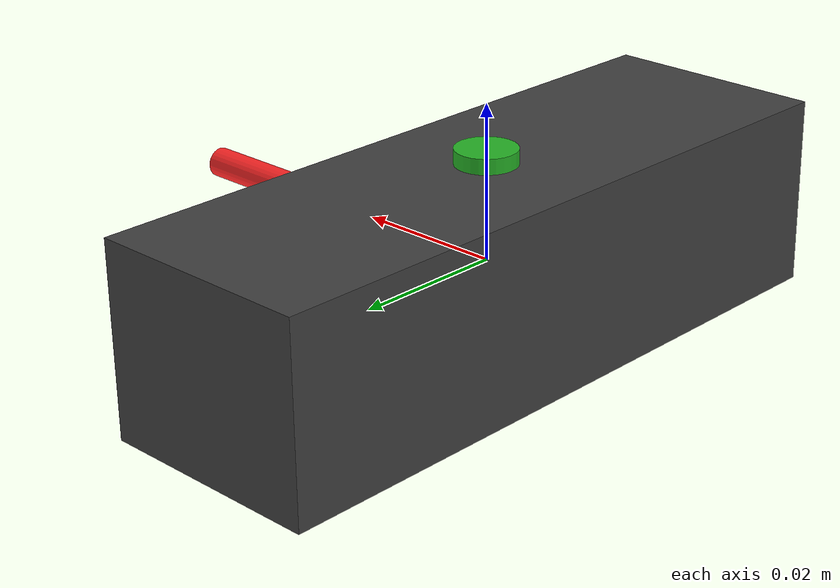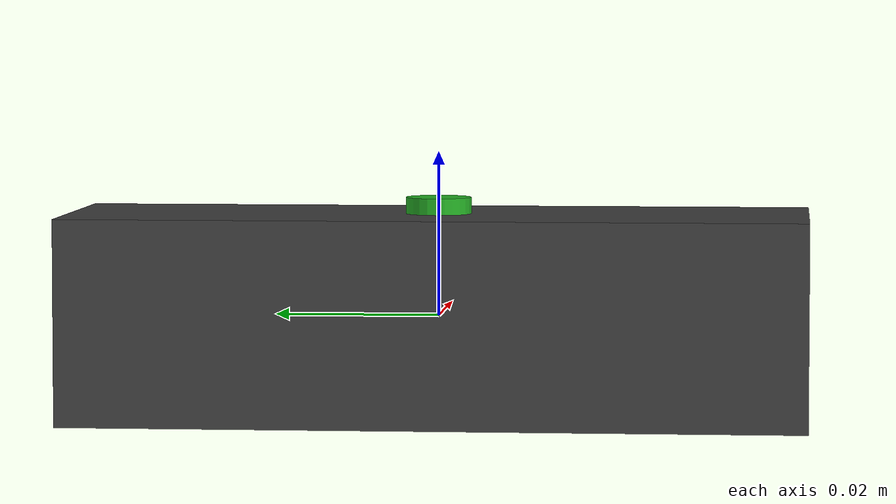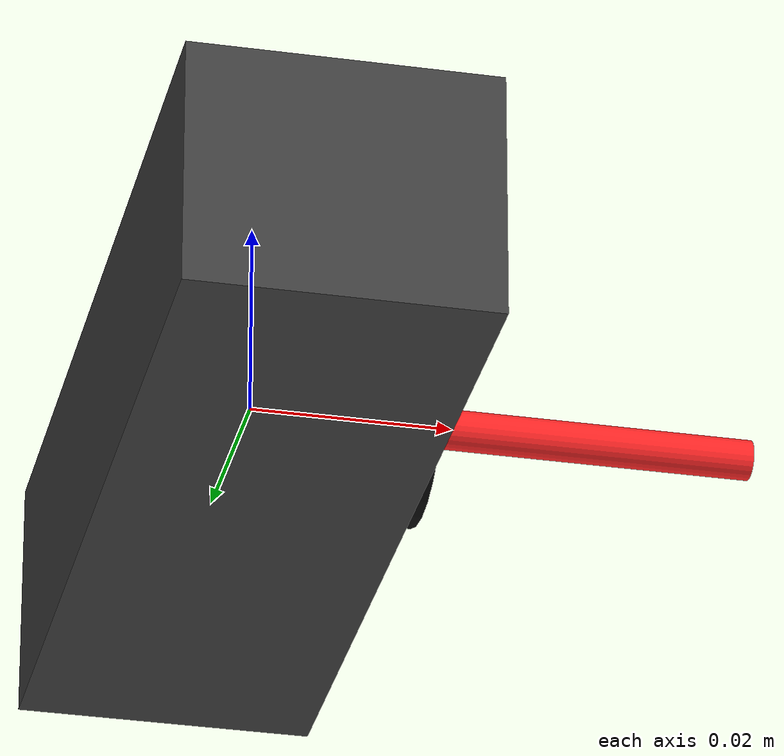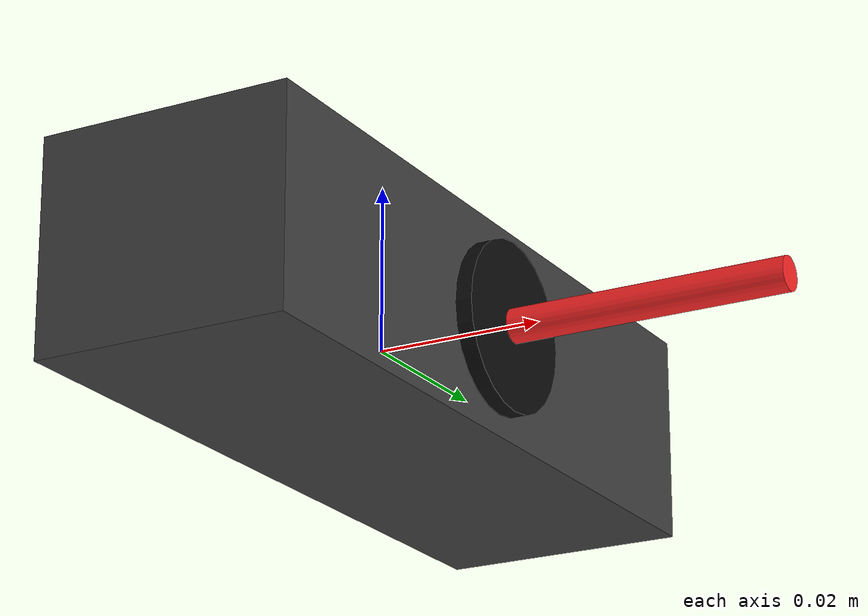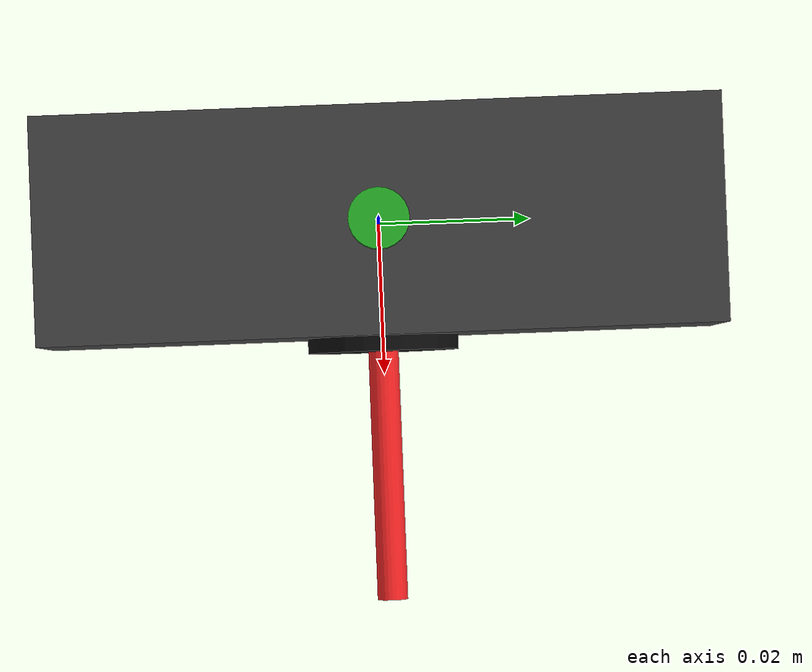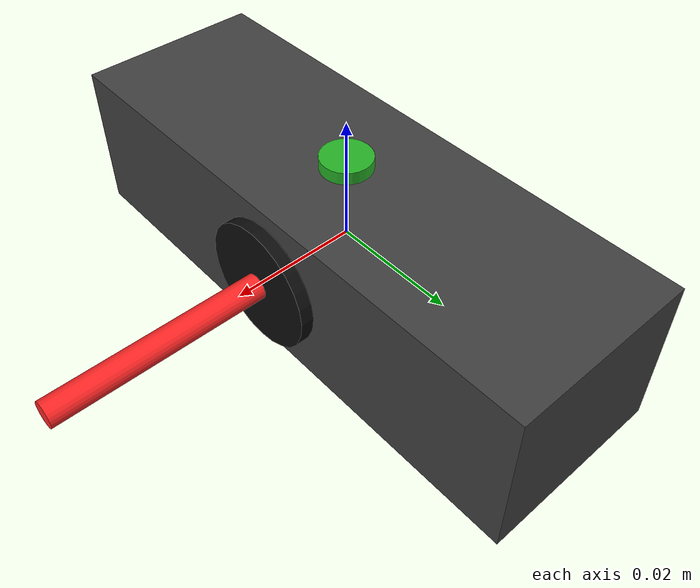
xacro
<?xml version="1.0"?>
<!--
  Fixed RGB-D Camera URDF xacro — 无底座独立相机模型。
  用于 spawn_fixed_cameras.py 生成 Gazebo 相机。
  参数通过 xacro 命令行传入。
-->
<robot name="$(arg name)" xmlns:xacro="http://ros.org/wiki/xacro">

  <xacro:arg name="name" default="camera"/>
  <xacro:arg name="color_width" default="424"/>
  <xacro:arg name="color_height" default="240"/>
  <xacro:arg name="depth_width" default="424"/>
  <xacro:arg name="depth_height" default="240"/>
  <xacro:arg name="fps" default="5"/>
  <xacro:arg name="color_hfov" default="1.2112585"/>
  <xacro:arg name="depth_hfov" default="1.2112585"/>

  <material name="$(arg name)_body"><color rgba="0.25 0.25 0.25 1"/></material>
  <material name="$(arg name)_lens"><color rgba="0.05 0.05 0.05 1"/></material>
  <material name="$(arg name)_axis"><color rgba="1 0.15 0.15 1"/></material>
  <material name="$(arg name)_up_mark"><color rgba="0.15 0.7 0.15 1"/></material>

  <link name="$(arg name)_link">
    <inertial>
      <mass value="0.05"/>
      <inertia ixx="0.0001" ixy="0" ixz="0" iyy="0.0001" iyz="0" izz="0.0001"/>
    </inertial>
    <visual name="body">
      <origin xyz="0 0 0" rpy="0 0 0"/>
      <geometry><box size="0.03 0.09 0.025"/></geometry>
      <material name="$(arg name)_body"/>
    </visual>
    <visual name="lens">
      <origin xyz="0.015 0 0" rpy="0 1.5708 0"/>
      <geometry><cylinder radius="0.010" length="0.004"/></geometry>
      <material name="$(arg name)_lens"/>
    </visual>
    <visual name="axis">
      <origin xyz="0.025 0 0" rpy="0 1.5708 0"/>
      <geometry><cylinder radius="0.002" length="0.05"/></geometry>
      <material name="$(arg name)_axis"/>
    </visual>
    <visual name="up_dot">
      <origin xyz="0 0 0.013" rpy="0 0 0"/>
      <geometry><cylinder radius="0.004" length="0.003"/></geometry>
      <material name="$(arg name)_up_mark"/>
    </visual>
  </link>

  <link name="$(arg name)_color_optical_frame"/>
  <joint name="$(arg name)_color_optical_joint" type="fixed">
    <parent link="$(arg name)_link"/>
    <child link="$(arg name)_color_optical_frame"/>
    <origin xyz="0 0 0" rpy="-1.5708 0 -1.5708"/>
  </joint>

  <link name="$(arg name)_depth_optical_frame"/>
  <joint name="$(arg name)_depth_optical_joint" type="fixed">
    <parent link="$(arg name)_link"/>
    <child link="$(arg name)_depth_optical_frame"/>
    <origin xyz="0 0 0" rpy="-1.5708 0 -1.5708"/>
  </joint>

  <gazebo reference="$(arg name)_link">
    <self_collide>0</self_collide>
    <sensor name="$(arg name)color" type="camera">
      <camera name="$(arg name)">
        <horizontal_fov>$(arg color_hfov)</horizontal_fov>
        <image>
          <width>$(arg color_width)</width>
          <height>$(arg color_height)</height>
          <format>RGB_INT8</format>
        </image>
        <clip><near>0.15</near><far>10.0</far></clip>
        <noise><type>gaussian</type><mean>0.0</mean><stddev>0.007</stddev></noise>
      </camera>
      <always_on>1</always_on>
      <update_rate>$(arg fps)</update_rate>
      <visualize>false</visualize>
    </sensor>
    <sensor name="$(arg name)depth" type="depth">
      <camera name="$(arg name)">
        <horizontal_fov>$(arg depth_hfov)</horizontal_fov>
        <image>
          <width>$(arg depth_width)</width>
          <height>$(arg depth_height)</height>
          <format>R_FLOAT32</format>
        </image>
        <clip><near>0.15</near><far>10.0</far></clip>
        <noise><type>gaussian</type><mean>0.0</mean><stddev>0.005</stddev></noise>
      </camera>
      <always_on>1</always_on>
      <update_rate>$(arg fps)</update_rate>
      <visualize>false</visualize>
    </sensor>
    <sensor name="$(arg name)ired1" type="camera">
      <camera name="$(arg name)">
        <horizontal_fov>1.48702</horizontal_fov>
        <image><width>160</width><height>120</height><format>L_INT8</format></image>
        <clip><near>0.15</near><far>10.0</far></clip>
      </camera>
      <always_on>1</always_on><update_rate>2</update_rate><visualize>false</visualize>
    </sensor>
    <sensor name="$(arg name)ired2" type="camera">
      <camera name="$(arg name)">
        <horizontal_fov>1.48702</horizontal_fov>
        <image><width>160</width><height>120</height><format>L_INT8</format></image>
        <clip><near>0.15</near><far>10.0</far></clip>
      </camera>
      <always_on>1</always_on><update_rate>2</update_rate><visualize>false</visualize>
    </sensor>
  </gazebo>

  <gazebo>
    <plugin name="$(arg name)" filename="librealsense_gazebo_plugin.so">
      <prefix>$(arg name)</prefix>
      <colorFrameName>$(arg name)_color_optical_frame</colorFrameName>
      <depthFrameName>$(arg name)_depth_optical_frame</depthFrameName>
    </plugin>
  </gazebo>

  <gazebo><static>true</static></gazebo>
</robot>
